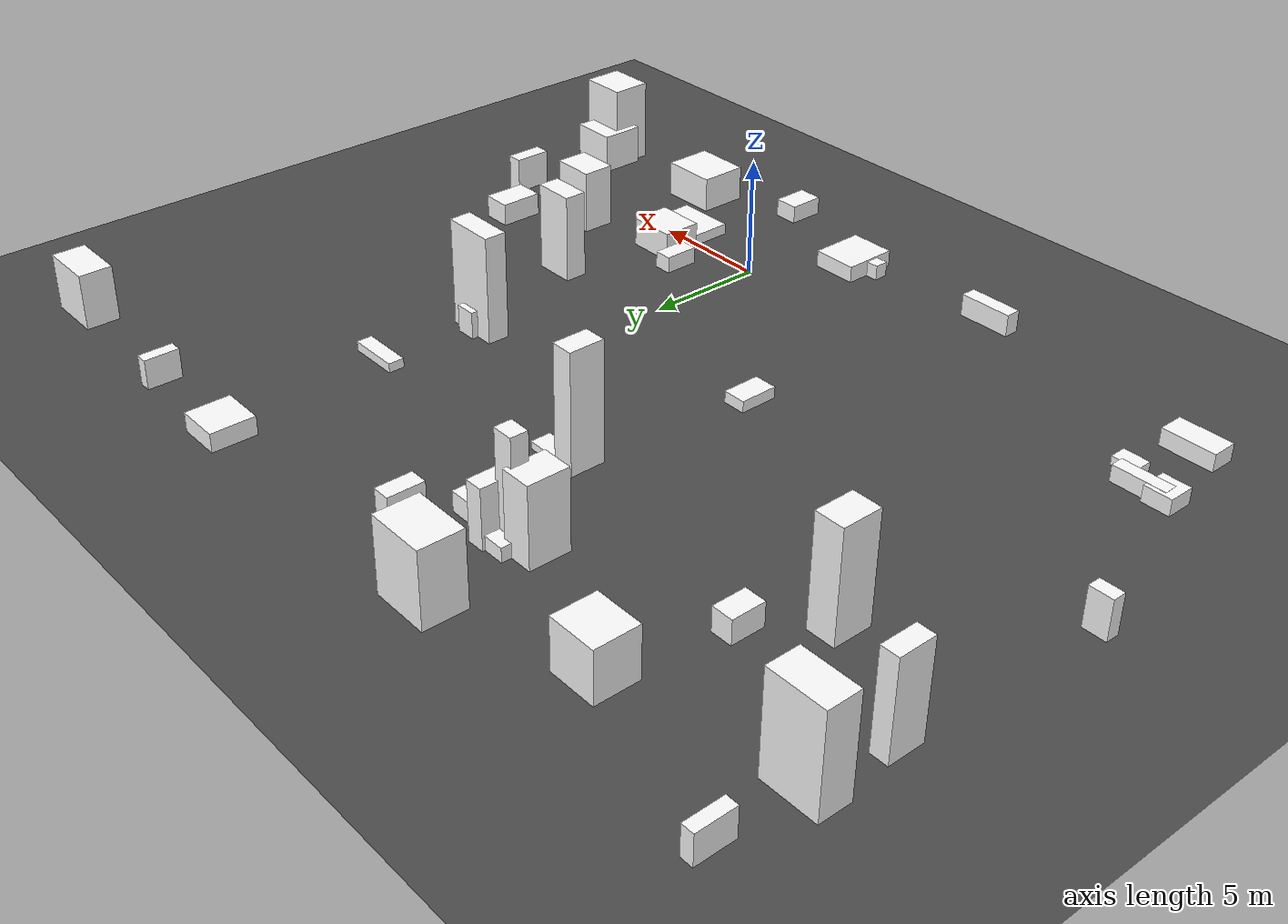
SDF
<sdf version="1.6">
 <world name="mirror_edge_world">
  <model name="ground_plane">
   <static>true</static>
   <link name="link">
    <collision name="collision">
     <geometry><plane><normal>0 0 1</normal><size>100 100</size></plane></geometry>
    </collision>
    <visual name="visual">
     <geometry><plane><normal>0 0 1</normal><size>100 100</size></plane></geometry>
     <material>
      <ambient>0.3 0.3 0.3 1</ambient>
      <diffuse>0.3 0.3 0.3 1</diffuse>
      <specular>0.5 0.5 0.5 1</specular>
      <emissive>0 0 0 1</emissive>
     </material>
    </visual>
   </link>
  </model>
  <model name="block_16_15">
   <static>true</static>
   <link name="link">
    <pose>10.60680300904761 4.253954704058631 0.48737348046383155 0 0 0</pose>
    <collision name="collision">
     <geometry><box><size>1.2362170252489266 1.8318640593925672 0.9747469609276631</size></box></geometry>
    </collision>
    <visual name="visual">
     <geometry><box><size>1.2362170252489266 1.8318640593925672 0.9747469609276631</size></box></geometry>
     <material>
      <ambient>1 1 1 1</ambient>
      <diffuse>1 1 1 1</diffuse>
      <specular>0.9 0.9 0.9 1</specular>
      <emissive>0.05 0.05 0.05 1</emissive>
     </material>
    </visual>
   </link>
  </model>
  <model name="block_16_16">
   <static>true</static>
   <link name="link">
    <pose>8.152492013038938 2.140665543428951 1.3701416853446395 0 0 0</pose>
    <visual name="visual">
     <geometry><box><size>1.8294850647079515 1.3851379074053733 2.740283370689279</size></box></geometry>
     <material>
      <ambient>1 1 1 1</ambient>
      <diffuse>1 1 1 1</diffuse>
      <specular>0.9 0.9 0.9 1</specular>
      <emissive>0.05 0.05 0.05 1</emissive>
     </material>
    </visual>
   </link>
  </model>
  <model name="block_16_21">
   <static>true</static>
   <link name="link">
    <pose>14.383438117937438 22.63478517235284 1.181222614870145 0 0 0</pose>
    <visual name="visual">
     <geometry><box><size>2.3629910736015107 1.3848962910642337 2.36244522974029</size></box></geometry>
     <material>
      <ambient>1 1 1 1</ambient>
      <diffuse>1 1 1 1</diffuse>
      <specular>0.9 0.9 0.9 1</specular>
      <emissive>0.05 0.05 0.05 1</emissive>
     </material>
    </visual>
   </link>
  </model>
  <model name="block_16_25">
   <static>true</static>
   <link name="link">
    <pose>-6.479327336800992 14.366456534328854 2.492709139142411 0 0 0</pose>
    <visual name="visual">
     <geometry><box><size>0.8995200699036976 1.4621052842064886 4.985418278284822</size></box></geometry>
     <material>
      <ambient>1 1 1 1</ambient>
      <diffuse>1 1 1 1</diffuse>
      <specular>0.9 0.9 0.9 1</specular>
      <emissive>0.05 0.05 0.05 1</emissive>
     </material>
    </visual>
   </link>
  </model>
  <model name="block_16_27">
   <static>true</static>
   <link name="link">
    <pose>12.68412638743223 -3.486897821413717 1.8247596370596895 0 0 0</pose>
    <visual name="visual">
     <geometry><box><size>2.0406663440571804 1.7393909513297257 3.649519274119379</size></box></geometry>
     <material>
      <ambient>1 1 1 1</ambient>
      <diffuse>1 1 1 1</diffuse>
      <specular>0.9 0.9 0.9 1</specular>
      <emissive>0.05 0.05 0.05 1</emissive>
     </material>
    </visual>
   </link>
  </model>
  <model name="block_16_28">
   <static>true</static>
   <link name="link">
    <pose>3.2487058534615514 22.932809695395832 0.3937187125042042 0 0 0</pose>
    <collision name="collision">
     <geometry><box><size>1.8293687147715465 1.8589836387294427 0.7874374250084084</size></box></geometry>
    </collision>
    <visual name="visual">
     <geometry><box><size>1.8293687147715465 1.8589836387294427 0.7874374250084084</size></box></geometry>
     <material>
      <ambient>1 1 1 1</ambient>
      <diffuse>1 1 1 1</diffuse>
      <specular>0.9 0.9 0.9 1</specular>
      <emissive>0.05 0.05 0.05 1</emissive>
     </material>
    </visual>
   </link>
  </model>
  <model name="block_16_30">
   <static>true</static>
   <link name="link">
    <pose>3.9625480884374014 15.69350157442485 0.19558836458015905 0 0 0</pose>
    <collision name="collision">
     <geometry><box><size>2.1804666114208837 0.6643099556258909 0.3911767291603181</size></box></geometry>
    </collision>
    <visual name="visual">
     <geometry><box><size>2.1804666114208837 0.6643099556258909 0.3911767291603181</size></box></geometry>
     <material>
      <ambient>1 1 1 1</ambient>
      <diffuse>1 1 1 1</diffuse>
      <specular>0.9 0.9 0.9 1</specular>
      <emissive>0.05 0.05 0.05 1</emissive>
     </material>
    </visual>
   </link>
  </model>
  <model name="block_16_31">
   <static>true</static>
   <link name="link">
    <pose>-6.857349820752393 18.729869946543165 0.41784185897636467 0 0 0</pose>
    <collision name="collision">
     <geometry><box><size>1.8538486562343703 1.2875983953602164 0.8356837179527293</size></box></geometry>
    </collision>
    <visual name="visual">
     <geometry><box><size>1.8538486562343703 1.2875983953602164 0.8356837179527293</size></box></geometry>
     <material>
      <ambient>1 1 1 1</ambient>
      <diffuse>1 1 1 1</diffuse>
      <specular>0.9 0.9 0.9 1</specular>
      <emissive>0.05 0.05 0.05 1</emissive>
     </material>
    </visual>
   </link>
  </model>
  <model name="block_16_32">
   <static>true</static>
   <link name="link">
    <pose>-16.48964198146281 16.27023425403659 0.49858401864804963 0 0 0</pose>
    <collision name="collision">
     <geometry><box><size>0.88661779954687 1.4045801947078236 0.9971680372960993</size></box></geometry>
    </collision>
    <visual name="visual">
     <geometry><box><size>0.88661779954687 1.4045801947078236 0.9971680372960993</size></box></geometry>
     <material>
      <ambient>1 1 1 1</ambient>
      <diffuse>1 1 1 1</diffuse>
      <specular>0.9 0.9 0.9 1</specular>
      <emissive>0.05 0.05 0.05 1</emissive>
     </material>
    </visual>
   </link>
  </model>
  <model name="block_16_36">
   <static>true</static>
   <link name="link">
    <pose>-7.177186473654107 22.153139827089905 1.5006482379512605 0 0 0</pose>
    <visual name="visual">
     <geometry><box><size>0.7115266340665434 1.4525655523428782 3.001296475902521</size></box></geometry>
     <material>
      <ambient>1 1 1 1</ambient>
      <diffuse>1 1 1 1</diffuse>
      <specular>0.9 0.9 0.9 1</specular>
      <emissive>0.05 0.05 0.05 1</emissive>
     </material>
    </visual>
   </link>
  </model>
  <model name="block_16_37">
   <static>true</static>
   <link name="link">
    <pose>-23.086602717206784 16.40277508355353 1.9508421666329467 0 0 0</pose>
    <visual name="visual">
     <geometry><box><size>0.7196498132384697 1.4936853932499037 3.9016843332658935</size></box></geometry>
     <material>
      <ambient>1 1 1 1</ambient>
      <diffuse>1 1 1 1</diffuse>
      <specular>0.9 0.9 0.9 1</specular>
      <emissive>0.05 0.05 0.05 1</emissive>
     </material>
    </visual>
   </link>
  </model>
  <model name="block_16_38">
   <static>true</static>
   <link name="link">
    <pose>4.460256474084467 -0.7052945222107017 0.23694149319139873 0 0 0</pose>
    <collision name="collision">
     <geometry><box><size>2.451346175321403 1.9147957224112764 0.47388298638279747</size></box></geometry>
    </collision>
    <visual name="visual">
     <geometry><box><size>2.451346175321403 1.9147957224112764 0.47388298638279747</size></box></geometry>
     <material>
      <ambient>1 1 1 1</ambient>
      <diffuse>1 1 1 1</diffuse>
      <specular>0.9 0.9 0.9 1</specular>
      <emissive>0.05 0.05 0.05 1</emissive>
     </material>
    </visual>
   </link>
  </model>
  <model name="block_16_40">
   <static>true</static>
   <link name="link">
    <pose>2.584494343865824 -5.4457207628401925 0.38590140207485457 0 0 0</pose>
    <collision name="collision">
     <geometry><box><size>1.0287822856091555 1.5100125126353934 0.7718028041497091</size></box></geometry>
    </collision>
    <visual name="visual">
     <geometry><box><size>1.0287822856091555 1.5100125126353934 0.7718028041497091</size></box></geometry>
     <material>
      <ambient>1 1 1 1</ambient>
      <diffuse>1 1 1 1</diffuse>
      <specular>0.9 0.9 0.9 1</specular>
      <emissive>0.05 0.05 0.05 1</emissive>
     </material>
    </visual>
   </link>
  </model>
  <model name="block_16_55">
   <static>true</static>
   <link name="link">
    <pose>-8.34754153425206 18.657628881646954 0.2953964976471717 0 0 0</pose>
    <collision name="collision">
     <geometry><box><size>1.7882005073111058 2.3589913952948605 0.5907929952943434</size></box></geometry>
    </collision>
    <visual name="visual">
     <geometry><box><size>1.7882005073111058 2.3589913952948605 0.5907929952943434</size></box></geometry>
     <material>
      <ambient>1 1 1 1</ambient>
      <diffuse>1 1 1 1</diffuse>
      <specular>0.9 0.9 0.9 1</specular>
      <emissive>0.05 0.05 0.05 1</emissive>
     </material>
    </visual>
   </link>
  </model>
  <model name="block_16_58">
   <static>true</static>
   <link name="link">
    <pose>-5.59612327696556 14.628753932327228 0.15430989359184616 0 0 0</pose>
    <collision name="collision">
     <geometry><box><size>1.9436226893709945 0.8522997271160611 0.3086197871836923</size></box></geometry>
    </collision>
    <visual name="visual">
     <geometry><box><size>1.9436226893709945 0.8522997271160611 0.3086197871836923</size></box></geometry>
     <material>
      <ambient>1 1 1 1</ambient>
      <diffuse>1 1 1 1</diffuse>
      <specular>0.9 0.9 0.9 1</specular>
      <emissive>0.05 0.05 0.05 1</emissive>
     </material>
    </visual>
   </link>
  </model>
  <model name="block_16_59">
   <static>true</static>
   <link name="link">
    <pose>-9.532092516113913 18.56859509702213 1.654524022115124 0 0 0</pose>
    <visual name="visual">
     <geometry><box><size>1.2776046659386486 1.7126544394311727 3.309048044230248</size></box></geometry>
     <material>
      <ambient>1 1 1 1</ambient>
      <diffuse>1 1 1 1</diffuse>
      <specular>0.9 0.9 0.9 1</specular>
      <emissive>0.05 0.05 0.05 1</emissive>
     </material>
    </visual>
   </link>
  </model>
  <model name="block_16_62">
   <static>true</static>
   <link name="link">
    <pose>3.3077100009449225 11.3796503513843 2.2754285838249446 0 0 0</pose>
    <visual name="visual">
     <geometry><box><size>2.2404639399507302 0.924833363711018 4.550857167649889</size></box></geometry>
     <material>
      <ambient>1 1 1 1</ambient>
      <diffuse>1 1 1 1</diffuse>
      <specular>0.9 0.9 0.9 1</specular>
      <emissive>0.05 0.05 0.05 1</emissive>
     </material>
    </visual>
   </link>
  </model>
  <model name="block_16_63">
   <static>true</static>
   <link name="link">
    <pose>3.97962676789529 1.1141234856190678 0.614330979188199 0 0 0</pose>
    <collision name="collision">
     <geometry><box><size>2.0213186192918533 1.6664932842196263 1.228661958376398</size></box></geometry>
    </collision>
    <visual name="visual">
     <geometry><box><size>2.0213186192918533 1.6664932842196263 1.228661958376398</size></box></geometry>
     <material>
      <ambient>1 1 1 1</ambient>
      <diffuse>1 1 1 1</diffuse>
      <specular>0.9 0.9 0.9 1</specular>
      <emissive>0.05 0.05 0.05 1</emissive>
     </material>
    </visual>
   </link>
  </model>
  <model name="block_16_67">
   <static>true</static>
   <link name="link">
    <pose>-22.594127873419534 19.547164861820747 2.00855062168382 0 0 0</pose>
    <visual name="visual">
     <geometry><box><size>2.2949297599158047 1.3356480777156872 4.01710124336764</size></box></geometry>
     <material>
      <ambient>1 1 1 1</ambient>
      <diffuse>1 1 1 1</diffuse>
      <specular>0.9 0.9 0.9 1</specular>
      <emissive>0.05 0.05 0.05 1</emissive>
     </material>
    </visual>
   </link>
  </model>
  <model name="block_17_1">
   <static>true</static>
   <link name="link">
    <pose>-18.408277009665543 13.857647197554328 2.2313905490598414 0 0 0</pose>
    <visual name="visual">
     <geometry><box><size>1.1762979080407614 1.622447132347078 4.462781098119683</size></box></geometry>
     <material>
      <ambient>1 1 1 1</ambient>
      <diffuse>1 1 1 1</diffuse>
      <specular>0.9 0.9 0.9 1</specular>
      <emissive>0.05 0.05 0.05 1</emissive>
     </material>
    </visual>
   </link>
  </model>
  <model name="block_17_4">
   <static>true</static>
   <link name="link">
    <pose>-3.0583281511300022 -3.8646006344378696 0.31725518705487743 0 0 0</pose>
    <collision name="collision">
     <geometry><box><size>1.5439161340832168 0.5870396014186297 0.6345103741097549</size></box></geometry>
    </collision>
    <visual name="visual">
     <geometry><box><size>1.5439161340832168 0.5870396014186297 0.6345103741097549</size></box></geometry>
     <material>
      <ambient>1 1 1 1</ambient>
      <diffuse>1 1 1 1</diffuse>
      <specular>0.9 0.9 0.9 1</specular>
      <emissive>0.05 0.05 0.05 1</emissive>
     </material>
    </visual>
   </link>
  </model>
  <model name="block_17_5">
   <static>true</static>
   <link name="link">
    <pose>-7.993053481034423 19.039281485453575 1.2301678631994932 0 0 0</pose>
    <visual name="visual">
     <geometry><box><size>0.741038745070669 1.8133743695384188 2.4603357263989865</size></box></geometry>
     <material>
      <ambient>1 1 1 1</ambient>
      <diffuse>1 1 1 1</diffuse>
      <specular>0.9 0.9 0.9 1</specular>
      <emissive>0.05 0.05 0.05 1</emissive>
     </material>
    </visual>
   </link>
  </model>
  <model name="block_17_6">
   <static>true</static>
   <link name="link">
    <pose>-7.233680062619005 6.905024084219746 0.24198801521335644 0 0 0</pose>
    <collision name="collision">
     <geometry><box><size>0.9601669552207783 1.607861918525651 0.4839760304267129</size></box></geometry>
    </collision>
    <visual name="visual">
     <geometry><box><size>0.9601669552207783 1.607861918525651 0.4839760304267129</size></box></geometry>
     <material>
      <ambient>1 1 1 1</ambient>
      <diffuse>1 1 1 1</diffuse>
      <specular>0.9 0.9 0.9 1</specular>
      <emissive>0.05 0.05 0.05 1</emissive>
     </material>
    </visual>
   </link>
  </model>
  <model name="block_17_8">
   <static>true</static>
   <link name="link">
    <pose>-19.997725468412593 0.7477390791368608 0.3466257781386881 0 0 0</pose>
    <collision name="collision">
     <geometry><box><size>2.1879506771008987 0.5675949688570257 0.6932515562773762</size></box></geometry>
    </collision>
    <visual name="visual">
     <geometry><box><size>2.1879506771008987 0.5675949688570257 0.6932515562773762</size></box></geometry>
     <material>
      <ambient>1 1 1 1</ambient>
      <diffuse>1 1 1 1</diffuse>
      <specular>0.9 0.9 0.9 1</specular>
      <emissive>0.05 0.05 0.05 1</emissive>
     </material>
    </visual>
   </link>
  </model>
  <model name="block_17_10">
   <static>true</static>
   <link name="link">
    <pose>-9.242949335365443 22.881235702504593 1.5457876053433572 0 0 0</pose>
    <visual name="visual">
     <geometry><box><size>2.4301118320235924 1.7923349290172381 3.0915752106867145</size></box></geometry>
     <material>
      <ambient>1 1 1 1</ambient>
      <diffuse>1 1 1 1</diffuse>
      <specular>0.9 0.9 0.9 1</specular>
      <emissive>0.05 0.05 0.05 1</emissive>
     </material>
    </visual>
   </link>
  </model>
  <model name="block_17_11">
   <static>true</static>
   <link name="link">
    <pose>-8.666359236405812 18.872526083582365 2.233151618897614 0 0 0</pose>
    <visual name="visual">
     <geometry><box><size>0.8577906829673361 0.7139495354801761 4.466303237795228</size></box></geometry>
     <material>
      <ambient>1 1 1 1</ambient>
      <diffuse>1 1 1 1</diffuse>
      <specular>0.9 0.9 0.9 1</specular>
      <emissive>0.05 0.05 0.05 1</emissive>
     </material>
    </visual>
   </link>
  </model>
  <model name="block_17_12">
   <static>true</static>
   <link name="link">
    <pose>-20.88976112300361 0.6564531759169219 0.34195639604146155 0 0 0</pose>
    <collision name="collision">
     <geometry><box><size>1.1487272645364954 1.1251889502827324 0.6839127920829231</size></box></geometry>
    </collision>
    <visual name="visual">
     <geometry><box><size>1.1487272645364954 1.1251889502827324 0.6839127920829231</size></box></geometry>
     <material>
      <ambient>1 1 1 1</ambient>
      <diffuse>1 1 1 1</diffuse>
      <specular>0.9 0.9 0.9 1</specular>
      <emissive>0.05 0.05 0.05 1</emissive>
     </material>
    </visual>
   </link>
  </model>
  <model name="block_17_15">
   <static>true</static>
   <link name="link">
    <pose>-2.35764097786916 -3.747068373880152 0.353721123156718 0 0 0</pose>
    <collision name="collision">
     <geometry><box><size>1.912486553938439 2.307775879071629 0.707442246313436</size></box></geometry>
    </collision>
    <visual name="visual">
     <geometry><box><size>1.912486553938439 2.307775879071629 0.707442246313436</size></box></geometry>
     <material>
      <ambient>1 1 1 1</ambient>
      <diffuse>1 1 1 1</diffuse>
      <specular>0.9 0.9 0.9 1</specular>
      <emissive>0.05 0.05 0.05 1</emissive>
     </material>
    </visual>
   </link>
  </model>
  <model name="block_17_17">
   <static>true</static>
   <link name="link">
    <pose>-22.466711447539765 22.981471273687227 0.607091647871294 0 0 0</pose>
    <visual name="visual">
     <geometry><box><size>0.5085982541593239 1.5984140041267572 1.214183295742588</size></box></geometry>
     <material>
      <ambient>1 1 1 1</ambient>
      <diffuse>1 1 1 1</diffuse>
      <specular>0.9 0.9 0.9 1</specular>
      <emissive>0.05 0.05 0.05 1</emissive>
     </material>
    </visual>
   </link>
  </model>
  <model name="block_17_20">
   <static>true</static>
   <link name="link">
    <pose>-9.146875087874255 -4.337634818165107 0.4680558698369665 0 0 0</pose>
    <collision name="collision">
     <geometry><box><size>2.2623072480356985 0.6568166772282029 0.936111739673933</size></box></geometry>
    </collision>
    <visual name="visual">
     <geometry><box><size>2.2623072480356985 0.6568166772282029 0.936111739673933</size></box></geometry>
     <material>
      <ambient>1 1 1 1</ambient>
      <diffuse>1 1 1 1</diffuse>
      <specular>0.9 0.9 0.9 1</specular>
      <emissive>0.05 0.05 0.05 1</emissive>
     </material>
    </visual>
   </link>
  </model>
  <model name="block_17_21">
   <static>true</static>
   <link name="link">
    <pose>7.849912941523009 22.882768893929082 0.6227993431111103 0 0 0</pose>
    <collision name="collision">
     <geometry><box><size>0.5084084568887315 1.4314948493215807 1.2455986862222206</size></box></geometry>
    </collision>
    <visual name="visual">
     <geometry><box><size>0.5084084568887315 1.4314948493215807 1.2455986862222206</size></box></geometry>
     <material>
      <ambient>1 1 1 1</ambient>
      <diffuse>1 1 1 1</diffuse>
      <specular>0.9 0.9 0.9 1</specular>
      <emissive>0.05 0.05 0.05 1</emissive>
     </material>
    </visual>
   </link>
  </model>
  <model name="block_17_22">
   <static>true</static>
   <link name="link">
    <pose>6.586946669478834 -3.5506794972075437 0.7650659597397842 0 0 0</pose>
    <visual name="visual">
     <geometry><box><size>2.3616495029355473 2.0567641596774537 1.5301319194795684</size></box></geometry>
     <material>
      <ambient>1 1 1 1</ambient>
      <diffuse>1 1 1 1</diffuse>
      <specular>0.9 0.9 0.9 1</specular>
      <emissive>0.05 0.05 0.05 1</emissive>
     </material>
    </visual>
   </link>
  </model>
  <model name="block_17_23">
   <static>true</static>
   <link name="link">
    <pose>-15.351705054930296 20.959484456593387 1.0532232359902471 0 0 0</pose>
    <visual name="visual">
     <geometry><box><size>2.0101339960791353 1.8416721443259736 2.1064464719804943</size></box></geometry>
     <material>
      <ambient>1 1 1 1</ambient>
      <diffuse>1 1 1 1</diffuse>
      <specular>0.9 0.9 0.9 1</specular>
      <emissive>0.05 0.05 0.05 1</emissive>
     </material>
    </visual>
   </link>
  </model>
  <model name="block_17_26">
   <static>true</static>
   <link name="link">
    <pose>3.351699463197914 11.801970769277606 0.5754489134640244 0 0 0</pose>
    <collision name="collision">
     <geometry><box><size>0.881005787962837 0.6253713514013217 1.1508978269280488</size></box></geometry>
    </collision>
    <visual name="visual">
     <geometry><box><size>0.881005787962837 0.6253713514013217 1.1508978269280488</size></box></geometry>
     <material>
      <ambient>1 1 1 1</ambient>
      <diffuse>1 1 1 1</diffuse>
      <specular>0.9 0.9 0.9 1</specular>
      <emissive>0.05 0.05 0.05 1</emissive>
     </material>
    </visual>
   </link>
  </model>
  <model name="block_17_32">
   <static>true</static>
   <link name="link">
    <pose>-19.772018243414436 -2.6950721769667743 0.36952916458563967 0 0 0</pose>
    <collision name="collision">
     <geometry><box><size>2.2135543388187413 1.1015990620553822 0.7390583291712793</size></box></geometry>
    </collision>
    <visual name="visual">
     <geometry><box><size>2.2135543388187413 1.1015990620553822 0.7390583291712793</size></box></geometry>
     <material>
      <ambient>1 1 1 1</ambient>
      <diffuse>1 1 1 1</diffuse>
      <specular>0.9 0.9 0.9 1</specular>
      <emissive>0.05 0.05 0.05 1</emissive>
     </material>
    </visual>
   </link>
  </model>
  <model name="block_17_35">
   <static>true</static>
   <link name="link">
    <pose>12.614347723190235 1.8343686685334495 0.7777052087939718 0 0 0</pose>
    <visual name="visual">
     <geometry><box><size>0.6490016786472887 1.6009096603917505 1.5554104175879435</size></box></geometry>
     <material>
      <ambient>1 1 1 1</ambient>
      <diffuse>1 1 1 1</diffuse>
      <specular>0.9 0.9 0.9 1</specular>
      <emissive>0.05 0.05 0.05 1</emissive>
     </material>
    </visual>
   </link>
  </model>
  <model name="block_17_36">
   <static>true</static>
   <link name="link">
    <pose>2.4914089215841138 1.883791035259872 0.3525395082611141 0 0 0</pose>
    <collision name="collision">
     <geometry><box><size>0.7553075379930503 1.4641049785015015 0.7050790165222282</size></box></geometry>
    </collision>
    <visual name="visual">
     <geometry><box><size>0.7553075379930503 1.4641049785015015 0.7050790165222282</size></box></geometry>
     <material>
      <ambient>1 1 1 1</ambient>
      <diffuse>1 1 1 1</diffuse>
      <specular>0.9 0.9 0.9 1</specular>
      <emissive>0.05 0.05 0.05 1</emissive>
     </material>
    </visual>
   </link>
  </model>
  <model name="block_17_37">
   <static>true</static>
   <link name="link">
    <pose>-18.85976364071899 -0.18408901894396923 0.18522607285955583 0 0 0</pose>
    <collision name="collision">
     <geometry><box><size>1.0945773692031426 0.7143580026102438 0.37045214571911167</size></box></geometry>
    </collision>
    <visual name="visual">
     <geometry><box><size>1.0945773692031426 0.7143580026102438 0.37045214571911167</size></box></geometry>
     <material>
      <ambient>1 1 1 1</ambient>
      <diffuse>1 1 1 1</diffuse>
      <specular>0.9 0.9 0.9 1</specular>
      <emissive>0.05 0.05 0.05 1</emissive>
     </material>
    </visual>
   </link>
  </model>
  <model name="block_17_38">
   <static>true</static>
   <link name="link">
    <pose>-23.604146436578784 7.857216159601614 0.8140217620009385 0 0 0</pose>
    <visual name="visual">
     <geometry><box><size>0.9456981775080164 0.5592879451206925 1.628043524001877</size></box></geometry>
     <material>
      <ambient>1 1 1 1</ambient>
      <diffuse>1 1 1 1</diffuse>
      <specular>0.9 0.9 0.9 1</specular>
      <emissive>0.05 0.05 0.05 1</emissive>
     </material>
    </visual>
   </link>
  </model>
  <model name="block_17_39">
   <static>true</static>
   <link name="link">
    <pose>5.131255853432027 5.8173226410921 1.8794979459907273 0 0 0</pose>
    <visual name="visual">
     <geometry><box><size>1.7304994930214916 0.930752364500983 3.7589958919814546</size></box></geometry>
     <material>
      <ambient>1 1 1 1</ambient>
      <diffuse>1 1 1 1</diffuse>
      <specular>0.9 0.9 0.9 1</specular>
      <emissive>0.05 0.05 0.05 1</emissive>
     </material>
    </visual>
   </link>
  </model>
  <model name="block_17_41">
   <static>true</static>
   <link name="link">
    <pose>12.378840314425545 -2.7456105012455128 0.8693230061812187 0 0 0</pose>
    <visual name="visual">
     <geometry><box><size>1.979493991370343 1.8955794081530493 1.7386460123624374</size></box></geometry>
     <material>
      <ambient>1 1 1 1</ambient>
      <diffuse>1 1 1 1</diffuse>
      <specular>0.9 0.9 0.9 1</specular>
      <emissive>0.05 0.05 0.05 1</emissive>
     </material>
    </visual>
   </link>
  </model>
 </world>
</sdf>
